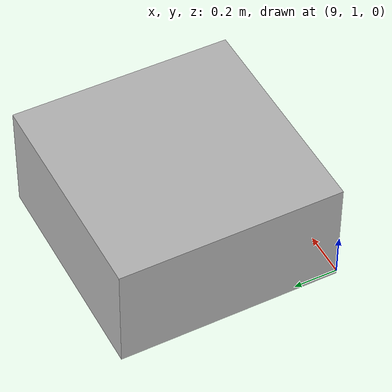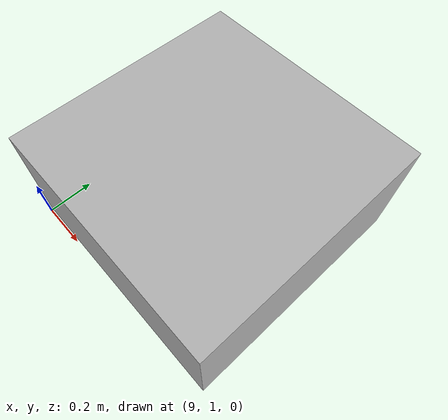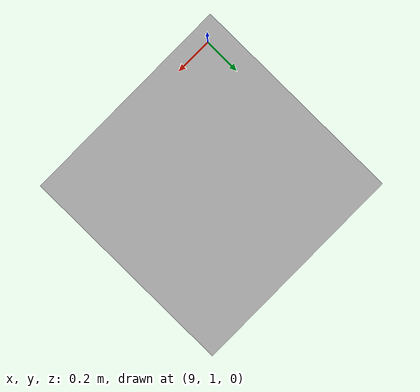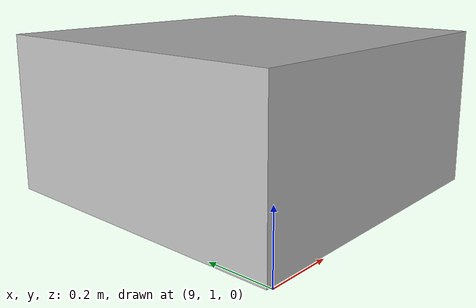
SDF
<sdf version="1.6">
 <world name="default">
  <model name="apriltag">
   <static>0</static>
   <link name="link">
    <inertial>
     <mass>20</mass>
     <inertia><ixx>1</ixx><ixy>0</ixy><ixz>0</ixz><iyy>1</iyy><iyz>0</iyz><izz>1</izz></inertia>
    </inertial>
    <collision name="collision">
     <geometry><box><size>1 1 0.5</size></box></geometry>
     <surface><friction><ode><mu>100</mu><mu2>50</mu2></ode></friction></surface>
    </collision>
    <visual name="visual">
     <cast_shadows>0</cast_shadows>
     <geometry><box><size>1 1 0.5</size></box></geometry>
     <material><script><name>AprilTag/Image</name><uri>__default__</uri></script></material>
    </visual>
   </link>
   <pose>9.48823 1.50765 0.250001 3e-06 -9e-06 -3.9e-05</pose>
  </model>
 </world>
</sdf>
